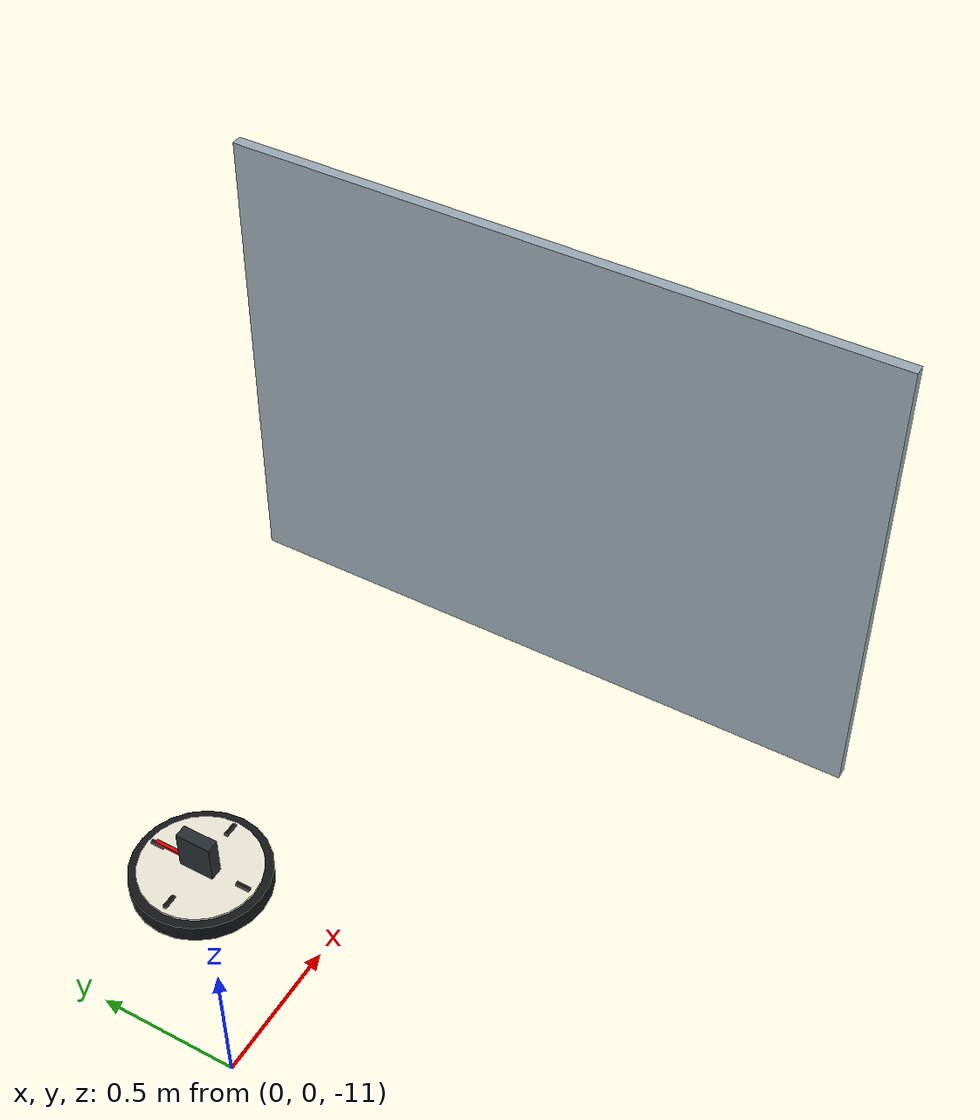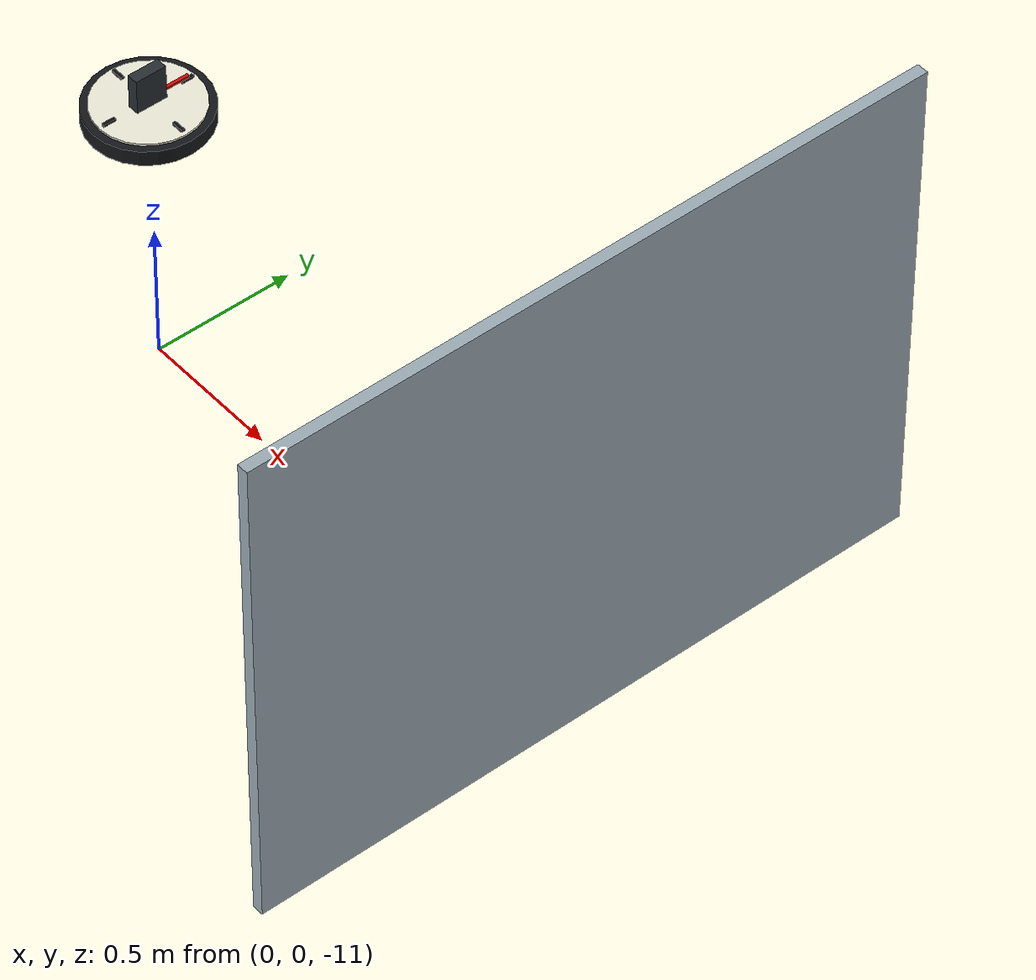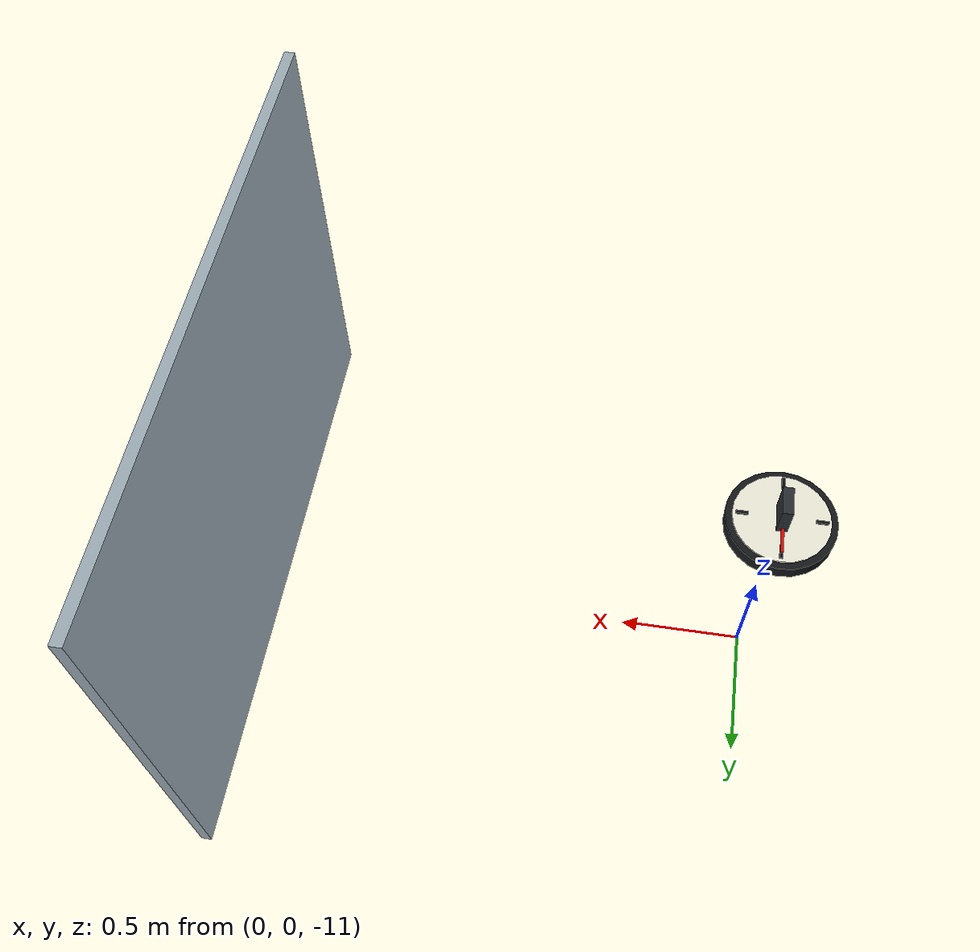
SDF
<?xml version="1.0"?>
<sdf version="1.10">
  <world name="meter_dataset">
    <physics name="fast_ode" type="ode"><max_step_size>0.01</max_step_size><real_time_factor>1.0</real_time_factor></physics>
    <plugin filename="gz-sim-physics-system" name="gz::sim::systems::Physics"/>
    <plugin filename="gz-sim-sensors-system" name="gz::sim::systems::Sensors"><render_engine>ogre2</render_engine></plugin>
    <plugin filename="gz-sim-scene-broadcaster-system" name="gz::sim::systems::SceneBroadcaster"/>
    <plugin filename="gz-sim-user-commands-system" name="gz::sim::systems::UserCommands"/>
    <scene><ambient>0.32 0.32 0.32 1</ambient><background>0.12 0.15 0.18 1</background><shadows>true</shadows></scene>
    <light name="key_light" type="directional"><pose>0 0 5 0 0 0</pose><diffuse>0.9 0.9 0.9 1</diffuse><specular>0.2 0.2 0.2 1</specular><direction>-0.8 0.2 -0.5</direction><cast_shadows>true</cast_shadows></light>
    <light name="fill_light" type="point"><pose>0 -1 2 0 0 0</pose><diffuse>0.45 0.5 0.62 1</diffuse><attenuation><range>8</range><constant>0.5</constant><linear>0.02</linear><quadratic>0.01</quadratic></attenuation></light>
    <model name="camera_rig"><static>true</static><pose>0 0 1.2 0 0 0</pose><link name="camera_link">
      <sensor name="meter_dataset_camera" type="camera"><always_on>true</always_on><visualize>false</visualize><update_rate>20</update_rate><topic>meter_dataset/camera/image_raw</topic><gz_frame_id>meter_dataset_camera_optical_frame</gz_frame_id>
        <camera><camera_info_topic>meter_dataset/camera/camera_info</camera_info_topic><horizontal_fov>1.085595</horizontal_fov><image><width>640</width><height>480</height><format>R8G8B8</format></image><clip><near>0.05</near><far>5</far></clip><noise><type>gaussian</type><mean>0.0</mean><stddev>0.004</stddev></noise></camera>
      </sensor>
    </link></model>
    <include><uri>model://synthetic_meter</uri><name>synthetic_meter_pressure</name><pose>0 0 -10 0 0 0</pose></include>
    <include><uri>model://synthetic_meter</uri><name>synthetic_meter_oil</name><pose>0 0 -10 0 0 0</pose></include>
    <model name="background_industrial_light"><static>true</static><pose>2 0 -10 0 0 0</pose><link name="panel"><visual name="visual"><geometry><box><size>0.04 2.4 1.8</size></box></geometry><material><diffuse>0.62 0.68 0.72 1</diffuse></material></visual></link></model>
    <model name="background_industrial_dark"><static>true</static><pose>2 0 -10 0 0 0</pose><link name="panel"><visual name="visual"><geometry><box><size>0.04 2.4 1.8</size></box></geometry><material><diffuse>0.12 0.16 0.19 1</diffuse></material></visual></link></model>
    <model name="background_concrete"><static>true</static><pose>2 0 -10 0 0 0</pose><link name="panel"><visual name="visual"><geometry><box><size>0.04 2.4 1.8</size></box></geometry><material><diffuse>0.42 0.40 0.36 1</diffuse></material></visual></link></model>
    <model name="meter_occluder"><static>true</static><pose>0 0 -10 0 0 0</pose><link name="body"><visual name="visual"><geometry><box><size>0.04 0.11 0.32</size></box></geometry><material><diffuse>0.16 0.18 0.20 1</diffuse></material></visual></link></model>
  </world>
</sdf>

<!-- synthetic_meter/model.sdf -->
<sdf version="1.10">
  <model name="synthetic_meter">
    <static>false</static>
    <allow_auto_disable>false</allow_auto_disable>
    <link name="case_link">
      <gravity>false</gravity><kinematic>true</kinematic>
      <inertial><mass>1.0</mass><inertia><ixx>0.01</ixx><iyy>0.01</iyy><izz>0.01</izz><ixy>0</ixy><ixz>0</ixz><iyz>0</iyz></inertia></inertial>
      <visual name="case"><geometry><cylinder><radius>0.205</radius><length>0.055</length></cylinder></geometry><material><diffuse>0.08 0.09 0.10 1</diffuse><specular>0.25 0.25 0.25 1</specular></material></visual>
      <visual name="face"><pose>0 0 0.031 0 0 0</pose><geometry><cylinder><radius>0.18</radius><length>0.008</length></cylinder></geometry><material><diffuse>0.94 0.93 0.86 1</diffuse><ambient>0.75 0.75 0.70 1</ambient></material></visual>
      <visual name="hub"><pose>0 0 0.041 0 0 0</pose><geometry><cylinder><radius>0.018</radius><length>0.016</length></cylinder></geometry><material><diffuse>0.05 0.05 0.05 1</diffuse></material></visual>
      <visual name="tick_00"><pose>0 0.145 0.041 0 0 0</pose><geometry><box><size>0.012 0.045 0.008</size></box></geometry><material><diffuse>0.04 0.04 0.04 1</diffuse></material></visual>
      <visual name="tick_03"><pose>0.145 0 0.041 0 0 1.57079632679</pose><geometry><box><size>0.012 0.045 0.008</size></box></geometry><material><diffuse>0.04 0.04 0.04 1</diffuse></material></visual>
      <visual name="tick_06"><pose>0 -0.145 0.041 0 0 0</pose><geometry><box><size>0.012 0.045 0.008</size></box></geometry><material><diffuse>0.04 0.04 0.04 1</diffuse></material></visual>
      <visual name="tick_09"><pose>-0.145 0 0.041 0 0 1.57079632679</pose><geometry><box><size>0.012 0.045 0.008</size></box></geometry><material><diffuse>0.04 0.04 0.04 1</diffuse></material></visual>
    </link>
    <link name="needle_link">
      <gravity>false</gravity>
      <inertial><mass>0.01</mass><inertia><ixx>0.0001</ixx><iyy>0.0001</iyy><izz>0.0001</izz><ixy>0</ixy><ixz>0</ixz><iyz>0</iyz></inertia></inertial>
      <visual name="needle"><pose>0 0.075 0.052 0 0 0</pose><geometry><box><size>0.012 0.15 0.008</size></box></geometry><material><diffuse>0.82 0.03 0.02 1</diffuse><emissive>0.12 0 0 1</emissive></material></visual>
    </link>
    <joint name="needle_joint" type="revolute">
      <parent>case_link</parent><child>needle_link</child>
      <axis><xyz>0 0 1</xyz><limit><lower>-2.5</lower><upper>2.5</upper><effort>10</effort><velocity>20</velocity></limit><dynamics><damping>0.2</damping></dynamics></axis>
    </joint>
    <plugin filename="gz-sim-joint-position-controller-system" name="gz::sim::systems::JointPositionController">
      <joint_name>needle_joint</joint_name><p_gain>8</p_gain><i_gain>0.1</i_gain><d_gain>0.2</d_gain><cmd_max>20</cmd_max><cmd_min>-20</cmd_min>
    </plugin>
    <plugin filename="gz-sim-joint-state-publisher-system" name="gz::sim::systems::JointStatePublisher">
      <topic>meter_dataset/joint_states</topic>
    </plugin>
  </model>
</sdf>
